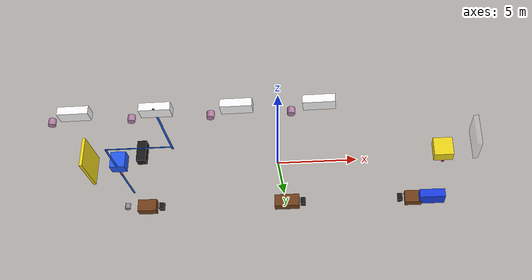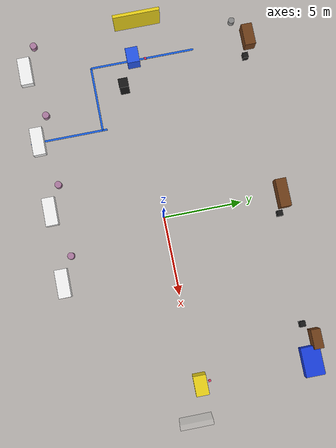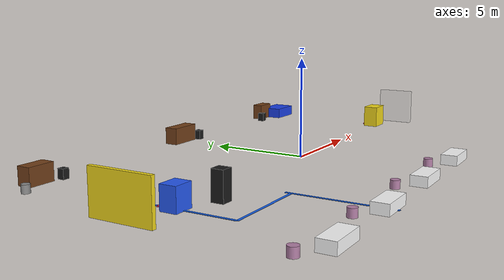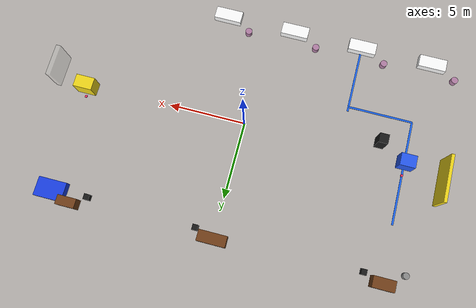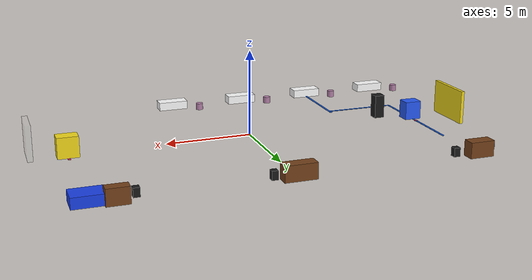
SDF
<?xml version="1.0"?>
<sdf version="1.9">
  <!-- Static visuals/collisions included by hospital_jazzy.sdf -->
  <model name="static_props">
    <static>1</static>
    <link name="props_link">
      <!-- Top zone furniture -->
      <visual name="office_desk"><pose>-10.5 7.6 0.45 0 0 0</pose><geometry><box><size>1.4 0.7 0.9</size></box></geometry>
        <material><ambient>0.45 0.25 0.1 1</ambient><diffuse>0.45 0.25 0.1 1</diffuse></material></visual>
      <collision name="office_desk_col"><pose>-10.5 7.6 0.45 0 0 0</pose><geometry><box><size>1.4 0.7 0.9</size></box></geometry></collision>
      <visual name="office_chair"><pose>-9.3 7.2 0.25 0 0 0</pose><geometry><box><size>0.35 0.35 0.5</size></box></geometry>
        <material><ambient>0.1 0.1 0.1 1</ambient><diffuse>0.1 0.1 0.1 1</diffuse></material></visual>
      <collision name="office_chair_col"><pose>-9.3 7.2 0.25 0 0 0</pose><geometry><box><size>0.35 0.35 0.5</size></box></geometry></collision>
      <visual name="office_stool"><pose>-11.8 6.8 0.2 0 0 0</pose><geometry><cylinder><radius>0.2</radius><length>0.4</length></cylinder></geometry>
        <material><ambient>0.55 0.55 0.55 1</ambient><diffuse>0.55 0.55 0.55 1</diffuse></material></visual>
      <collision name="office_stool_col"><pose>-11.8 6.8 0.2 0 0 0</pose><geometry><cylinder><radius>0.2</radius><length>0.4</length></cylinder></geometry></collision>

      <visual name="nurse_desk"><pose>0 7.6 0.45 0 0 0</pose><geometry><box><size>1.8 0.7 0.9</size></box></geometry>
        <material><ambient>0.45 0.25 0.1 1</ambient><diffuse>0.45 0.25 0.1 1</diffuse></material></visual>
      <collision name="nurse_desk_col"><pose>0 7.6 0.45 0 0 0</pose><geometry><box><size>1.8 0.7 0.9</size></box></geometry></collision>
      <visual name="nurse_chair"><pose>1.2 7.2 0.25 0 0 0</pose><geometry><box><size>0.35 0.35 0.5</size></box></geometry>
        <material><ambient>0.1 0.1 0.1 1</ambient><diffuse>0.1 0.1 0.1 1</diffuse></material></visual>
      <collision name="nurse_chair_col"><pose>1.2 7.2 0.25 0 0 0</pose><geometry><box><size>0.35 0.35 0.5</size></box></geometry></collision>

      <visual name="blue_bed_area"><pose>10.5 7.2 0.3 0 0 0</pose><geometry><box><size>1.8 1.2 0.6</size></box></geometry>
        <material><ambient>0.1 0.25 0.9 1</ambient><diffuse>0.1 0.25 0.9 1</diffuse></material></visual>
      <collision name="blue_bed_area_col"><pose>10.5 7.2 0.3 0 0 0</pose><geometry><box><size>1.8 1.2 0.6</size></box></geometry></collision>

      <visual name="blue_desk"><pose>9.2 7.7 0.45 0 0 0</pose><geometry><box><size>1.2 0.6 0.9</size></box></geometry>
        <material><ambient>0.45 0.25 0.1 1</ambient><diffuse>0.45 0.25 0.1 1</diffuse></material></visual>
      <collision name="blue_desk_col"><pose>9.2 7.7 0.45 0 0 0</pose><geometry><box><size>1.2 0.6 0.9</size></box></geometry></collision>
      <visual name="blue_chair"><pose>8.2 7.1 0.25 0 0 0</pose><geometry><box><size>0.35 0.35 0.5</size></box></geometry>
        <material><ambient>0.1 0.1 0.1 1</ambient><diffuse>0.1 0.1 0.1 1</diffuse></material></visual>
      <collision name="blue_chair_col"><pose>8.2 7.1 0.25 0 0 0</pose><geometry><box><size>0.35 0.35 0.5</size></box></geometry></collision>

      <!-- Middle zone equipment -->
      <visual name="blue_machine"><pose>-10.5 0.0 0.55 0 0 0</pose><geometry><box><size>1.0 0.8 1.1</size></box></geometry>
        <material><ambient>0.15 0.35 0.95 1</ambient><diffuse>0.15 0.35 0.95 1</diffuse></material></visual>
      <collision name="blue_machine_col"><pose>-10.5 0.0 0.55 0 0 0</pose><geometry><box><size>1.0 0.8 1.1</size></box></geometry></collision>
      <visual name="yellow_panel_1"><pose>-12.8 0.7 1.0 0 0 0</pose><geometry><box><size>0.2 3.0 2</size></box></geometry>
        <material><ambient>0.95 0.85 0.1 1</ambient><diffuse>0.95 0.85 0.1 1</diffuse></material></visual>
      <collision name="yellow_panel_1_col"><pose>-12.8 0.7 1.0 0 0 0</pose><geometry><box><size>0.2 3.0 2</size></box></geometry></collision>
      <visual name="black_rack"><pose>-8.7 -0.9 0.7 0 0 0</pose><geometry><box><size>0.6 0.6 1.4</size></box></geometry>
        <material><ambient>0.1 0.1 0.1 1</ambient><diffuse>0.1 0.1 0.1 1</diffuse></material></visual>
      <collision name="black_rack_col"><pose>-8.7 -0.9 0.7 0 0 0</pose><geometry><box><size>0.6 0.6 1.4</size></box></geometry></collision>
      <visual name="yellow_cabinet"><pose>10.5 0.2 0.6 0 0 0</pose><geometry><box><size>1.2 0.8 1.2</size></box></geometry>
        <material><ambient>0.95 0.85 0.1 1</ambient><diffuse>0.95 0.85 0.1 1</diffuse></material></visual>
      <collision name="yellow_cabinet_col"><pose>10.5 0.2 0.6 0 0 0</pose><geometry><box><size>1.2 0.8 1.2</size></box></geometry></collision>
      <visual name="archway"><pose>12.5 -0.5 1.0 0 0 0</pose><geometry><box><size>0.3 2.0 2</size></box></geometry>
        <material><ambient>0.8 0.8 0.8 0.25</ambient><diffuse>0.8 0.8 0.8 0.25</diffuse></material></visual>

      <!-- Bottom zone beds + bedside tables -->
      <visual name="bed_1"><pose>-11.0 -7.0 0.25 0 0 0</pose><geometry><box><size>1.8 0.8 0.5</size></box></geometry>
        <material><ambient>1 1 1 1</ambient><diffuse>1 1 1 1</diffuse></material></visual>
      <collision name="bed_1_col"><pose>-11.0 -7.0 0.25 0 0 0</pose><geometry><box><size>1.8 0.8 0.5</size></box></geometry></collision>
      <visual name="table_1"><pose>-12.6 -6.2 0.2 0 0 0</pose><geometry><cylinder><radius>0.22</radius><length>0.4</length></cylinder></geometry>
        <material><ambient>0.7 0.5 0.65 1</ambient><diffuse>0.7 0.5 0.65 1</diffuse></material></visual>
      <collision name="table_1_col"><pose>-12.6 -6.2 0.2 0 0 0</pose><geometry><cylinder><radius>0.22</radius><length>0.4</length></cylinder></geometry></collision>

      <visual name="bed_2"><pose>-6.3 -7.0 0.25 0 0 0</pose><geometry><box><size>1.8 0.8 0.5</size></box></geometry>
        <material><ambient>1 1 1 1</ambient><diffuse>1 1 1 1</diffuse></material></visual>
      <collision name="bed_2_col"><pose>-6.3 -7.0 0.25 0 0 0</pose><geometry><box><size>1.8 0.8 0.5</size></box></geometry></collision>
      <visual name="table_2"><pose>-7.9 -6.2 0.2 0 0 0</pose><geometry><cylinder><radius>0.22</radius><length>0.4</length></cylinder></geometry>
        <material><ambient>0.7 0.5 0.65 1</ambient><diffuse>0.7 0.5 0.65 1</diffuse></material></visual>
      <collision name="table_2_col"><pose>-7.9 -6.2 0.2 0 0 0</pose><geometry><cylinder><radius>0.22</radius><length>0.4</length></cylinder></geometry></collision>

      <visual name="bed_3"><pose>-1.7 -7.0 0.25 0 0 0</pose><geometry><box><size>1.8 0.8 0.5</size></box></geometry>
        <material><ambient>1 1 1 1</ambient><diffuse>1 1 1 1</diffuse></material></visual>
      <collision name="bed_3_col"><pose>-1.7 -7.0 0.25 0 0 0</pose><geometry><box><size>1.8 0.8 0.5</size></box></geometry></collision>
      <visual name="table_3"><pose>-3.3 -6.2 0.2 0 0 0</pose><geometry><cylinder><radius>0.22</radius><length>0.4</length></cylinder></geometry>
        <material><ambient>0.7 0.5 0.65 1</ambient><diffuse>0.7 0.5 0.65 1</diffuse></material></visual>
      <collision name="table_3_col"><pose>-3.3 -6.2 0.2 0 0 0</pose><geometry><cylinder><radius>0.22</radius><length>0.4</length></cylinder></geometry></collision>

      <visual name="bed_4"><pose>2.9 -7.0 0.25 0 0 0</pose><geometry><box><size>1.8 0.8 0.5</size></box></geometry>
        <material><ambient>1 1 1 1</ambient><diffuse>1 1 1 1</diffuse></material></visual>
      <collision name="bed_4_col"><pose>2.9 -7.0 0.25 0 0 0</pose><geometry><box><size>1.8 0.8 0.5</size></box></geometry></collision>
      <visual name="table_4"><pose>1.3 -6.2 0.2 0 0 0</pose><geometry><cylinder><radius>0.22</radius><length>0.4</length></cylinder></geometry>
        <material><ambient>0.7 0.5 0.65 1</ambient><diffuse>0.7 0.5 0.65 1</diffuse></material></visual>
      <collision name="table_4_col"><pose>1.3 -6.2 0.2 0 0 0</pose><geometry><cylinder><radius>0.22</radius><length>0.4</length></cylinder></geometry></collision>

      <!-- Task markers -->
      <visual name="task_pickup_marker"><pose>-10.5 0.8 0.025 0 0 0</pose><geometry><box><size>0.15 0.15 0.05</size></box></geometry>
        <material><ambient>0.95 0.2 0.4 1</ambient><diffuse>0.95 0.2 0.4 1</diffuse></material></visual>
      <collision name="task_pickup_marker_col"><pose>-10.5 0.8 0.025 0 0 0</pose><geometry><box><size>0.15 0.15 0.05</size></box></geometry></collision>
      <visual name="task_dropoff_marker"><pose>10.5 0.8 0.025 0 0 0</pose><geometry><box><size>0.15 0.15 0.05</size></box></geometry>
        <material><ambient>0.95 0.2 0.4 1</ambient><diffuse>0.95 0.2 0.4 1</diffuse></material></visual>
      <collision name="task_dropoff_marker_col"><pose>10.5 0.8 0.025 0 0 0</pose><geometry><box><size>0.15 0.15 0.05</size></box></geometry></collision>

      <!-- Blue path line -->
      <visual name="path_seg1"><pose>-6.3 -5.0 0.03 0 0 0</pose><geometry><box><size>0.12 5.0 0.02</size></box></geometry>
        <material><ambient>0.1 0.4 0.95 1</ambient><diffuse>0.1 0.4 0.95 1</diffuse></material></visual>
      <visual name="path_seg2"><pose>-8.4 -2.8 0.03 0 0 1.57</pose><geometry><box><size>0.12 4.2 0.02</size></box></geometry>
        <material><ambient>0.1 0.4 0.95 1</ambient><diffuse>0.1 0.4 0.95 1</diffuse></material></visual>
      <visual name="path_seg3"><pose>-10.5 0.6 0.03 0 0 0</pose><geometry><box><size>0.12 6.8 0.02</size></box></geometry>
        <material><ambient>0.1 0.4 0.95 1</ambient><diffuse>0.1 0.4 0.95 1</diffuse></material></visual>
    </link>
  </model>
</sdf>
